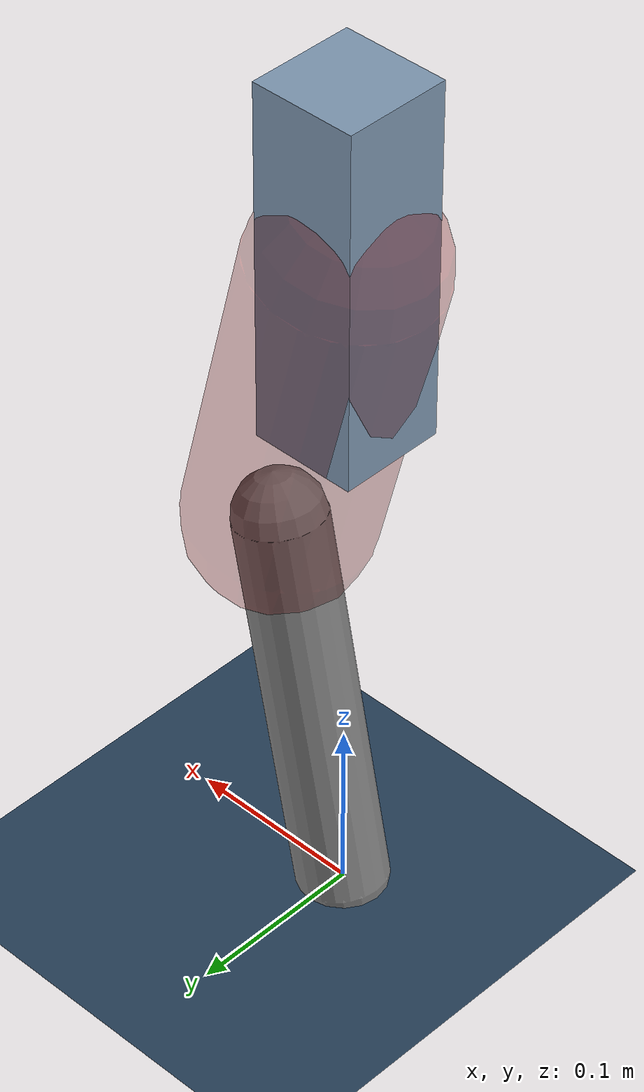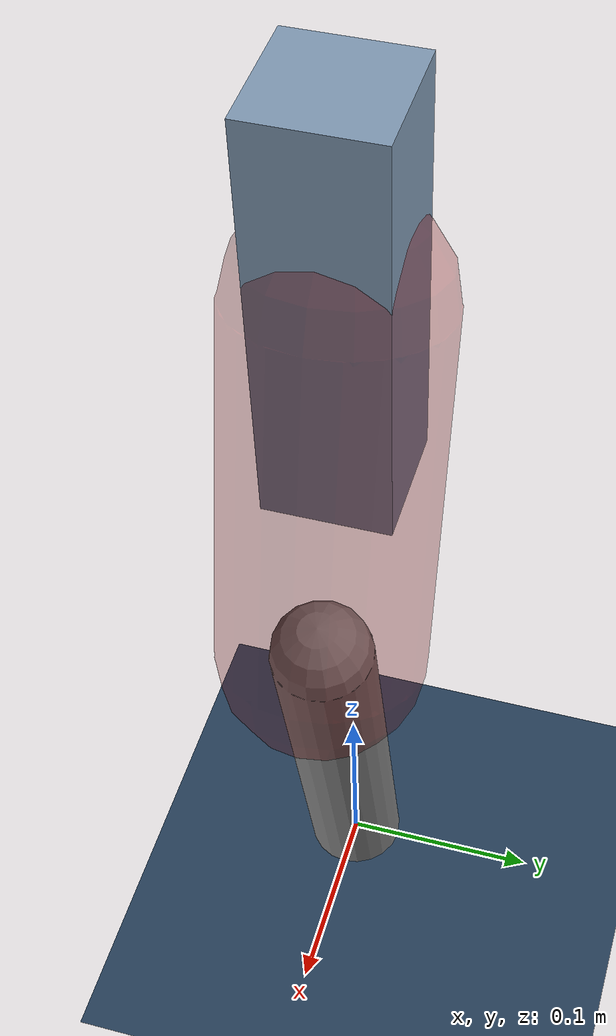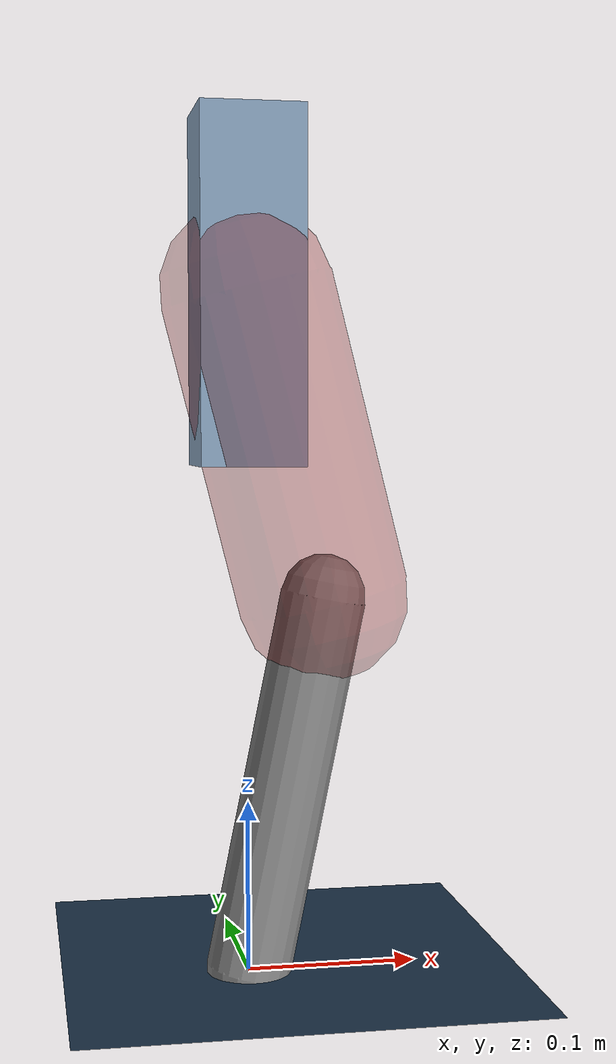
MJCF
<mujoco model="Hopper2D">
	<compiler inertiafromgeom="true" angle="radian" />
	<option timestep="0.001" integrator="implicit" cone="elliptic" solver="Newton" tolerance="1e-10" />

	<default>
		<geom contype="1" conaffinity="1" condim="3" friction="2 0.005 0.0001" solref="0.005 1" />
		<joint limited="true" damping="0.1" />
	</default>

	<asset>
		<texture name="skybox" type="skybox" builtin="gradient" rgb1=".4 .6 .8" rgb2="0 0 0" width="800" height="800" />
		<texture name="grid" type="2d" builtin="checker" rgb1=".1 .2 .3" rgb2=".2 .3 .4" width="300" height="300" mark="edge" markrgb=".2 .3 .4" />
		<material name="ground" texture="grid" texrepeat="1 1" texuniform="true" reflectance="0.1" />
		<material name="leg" rgba="0.5 0.6 0.7 1" />
	</asset>

	<worldbody>

		<geom name="floor" type="plane" size="5 5 0.25" material="ground" />

		<light directional="false" diffuse="0.8 0.8 0.8" specular="0.3 0.3 0.3" pos="0 0 2" dir="0 0 -1" />
		<light mode="targetbodycom" target="base" directional="false" diffuse="0.8 0.8 0.8" specular="0.3 0.3 0.3" pos="0 0 2" dir="0 0 -1" />

		<camera name="fixed" pos="0 -2 1" xyaxes="1 0 0 0 0 1" />
		<camera name="tracking" mode="trackcom" pos="0 -3 1" />

		<body name="root" pos="0 0 0.3959451949229066">
			<joint name="slide_x" type="slide" axis="1 0 0" range="-100 100" />
			<joint name="slide_z" type="slide" axis="0 0 1" range="0 10" />

			<body name="base" pos="0 0 0">
				<geom name="torso" type="box" size="0.03 0.03 0.1" mass="1.799" material="leg" />

				<body name="link1" pos="0 0 0" euler="0 1.3230820859861696 0">
					<joint type="hinge" axis="0 -1 0" pos="0 0 0" name="hinge1" limited="true" range="-3.14 3.14" stiffness="0" damping="0.1" />
					<geom name="thigh" type="capsule" fromto="0 0 0 0.18153758885973983 0 0" size="0.05" rgba="0.5 0 0 0.3" mass="0.6842439721493496" />

					<body name="link2" pos="0.18153758885973983 0 0" euler="0 0.4473870675064045 0">
						<joint type="hinge" axis="0 -1 0" pos="0 0 0" name="hinge2" limited="true" range="-3.14 3.14" stiffness="0" damping="0.1" />
						<geom name="shank" type="capsule" fromto="0 0 0 0.22440760606316673 0 0" size="0.025" mass="0.42132608485053336" />

					</body>
				</body>
			</body>
		</body>
	</worldbody>

	<actuator>
		<motor name="torque1" joint="hinge1" ctrlrange="-34.08034277975094 34.08034277975094" ctrllimited="true" gear="1" />
		<motor name="torque2" joint="hinge2" ctrlrange="-33.48221727534247 33.48221727534247" ctrllimited="true" gear="1" />
	</actuator>
</mujoco>
